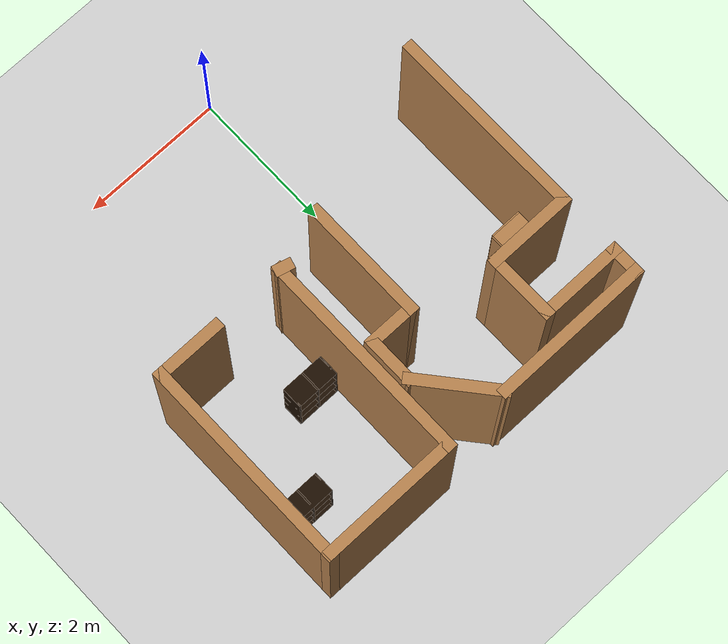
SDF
<sdf version="1.6">
 <world name="default">
  <model name="ground_plane">
   <static>1</static>
   <link name="link">
    <collision name="collision">
     <geometry><plane><normal>0 0 1</normal><size>100 100</size></plane></geometry>
     <surface><friction><ode><mu>100</mu><mu2>50</mu2></ode></friction></surface>
    </collision>
    <visual name="visual">
     <cast_shadows>0</cast_shadows>
     <geometry><plane><normal>0 0 1</normal><size>100 100</size></plane></geometry>
     <material>
      <script><uri>file://media/materials/scripts/gazebo.material</uri><name>Gazebo/Grey</name></script>
     </material>
    </visual>
   </link>
  </model>
  <model name="map_42">
   <link name="Wall_0">
    <pose>-0.25 6.70969 0 0 -0 3.14159</pose>
    <visual name="Wall_0_Visual">
     <pose>0 0 1.25 0 -0 0</pose>
     <geometry><box><size>2.25 0.15 2.5</size></box></geometry>
     <material>
      <script><uri>file://media/materials/scripts/gazebo.material</uri><name>Gazebo/Wood</name></script>
      <ambient>1 1 1 1</ambient>
      <shader type="pixel"/>
     </material>
     <meta><layer>0</layer></meta>
    </visual>
    <collision name="Wall_0_Collision">
     <pose>0 0 1.25 0 -0 0</pose>
     <geometry><box><size>2.25 0.15 2.5</size></box></geometry>
     <surface>
      <friction>
       <ode><mu>1</mu><mu2>1</mu2><fdir1>0 0 0</fdir1><slip1>0</slip1><slip2>0</slip2></ode>
       <torsional>
        <coefficient>1</coefficient>
        <patch_radius>0</patch_radius>
        <surface_radius>0</surface_radius>
        <use_patch_radius>1</use_patch_radius>
        <ode><slip>0</slip></ode>
       </torsional>
      </friction>
      <bounce><restitution_coefficient>0</restitution_coefficient><threshold>1e+06</threshold></bounce>
      <contact>
       <collide_without_contact>0</collide_without_contact>
       <collide_without_contact_bitmask>1</collide_without_contact_bitmask>
       <collide_bitmask>1</collide_bitmask>
       <ode>
        <soft_cfm>0</soft_cfm>
        <soft_erp>0.2</soft_erp>
        <kp>1e+13</kp>
        <kd>1</kd>
        <max_vel>0.01</max_vel>
        <min_depth>0</min_depth>
       </ode>
       <bullet>
        <split_impulse>1</split_impulse>
        <split_impulse_penetration_threshold>-0.01</split_impulse_penetration_threshold>
        <soft_cfm>0</soft_cfm>
        <soft_erp>0.2</soft_erp>
        <kp>1e+13</kp>
        <kd>1</kd>
       </bullet>
      </contact>
     </surface>
    </collision>
   </link>
   <link name="Wall_1">
    <pose>-1.3 6.53469 0 0 0 -1.5708</pose>
    <visual name="Wall_1_Visual">
     <pose>0 0 1.25 0 -0 0</pose>
     <geometry><box><size>0.5 0.15 2.5</size></box></geometry>
     <material>
      <script><uri>file://media/materials/scripts/gazebo.material</uri><name>Gazebo/Wood</name></script>
      <ambient>1 1 1 1</ambient>
      <shader type="pixel"/>
     </material>
     <meta><layer>0</layer></meta>
    </visual>
    <collision name="Wall_1_Collision">
     <pose>0 0 1.25 0 -0 0</pose>
     <geometry><box><size>0.5 0.15 2.5</size></box></geometry>
     <surface>
      <friction>
       <ode><mu>1</mu><mu2>1</mu2><fdir1>0 0 0</fdir1><slip1>0</slip1><slip2>0</slip2></ode>
       <torsional>
        <coefficient>1</coefficient>
        <patch_radius>0</patch_radius>
        <surface_radius>0</surface_radius>
        <use_patch_radius>1</use_patch_radius>
        <ode><slip>0</slip></ode>
       </torsional>
      </friction>
      <bounce><restitution_coefficient>0</restitution_coefficient><threshold>1e+06</threshold></bounce>
      <contact>
       <collide_without_contact>0</collide_without_contact>
       <collide_without_contact_bitmask>1</collide_without_contact_bitmask>
       <collide_bitmask>1</collide_bitmask>
       <ode>
        <soft_cfm>0</soft_cfm>
        <soft_erp>0.2</soft_erp>
        <kp>1e+13</kp>
        <kd>1</kd>
        <max_vel>0.01</max_vel>
        <min_depth>0</min_depth>
       </ode>
       <bullet>
        <split_impulse>1</split_impulse>
        <split_impulse_penetration_threshold>-0.01</split_impulse_penetration_threshold>
        <soft_cfm>0</soft_cfm>
        <soft_erp>0.2</soft_erp>
        <kp>1e+13</kp>
        <kd>1</kd>
       </bullet>
      </contact>
     </surface>
    </collision>
   </link>
   <link name="Wall_102">
    <pose>0.916228 4.44953 0 0 -0 1.5708</pose>
    <visual name="Wall_102_Visual">
     <pose>0 0 1.25 0 -0 0</pose>
     <geometry><box><size>1.75 0.15 2.5</size></box></geometry>
     <material>
      <script><uri>file://media/materials/scripts/gazebo.material</uri><name>Gazebo/Wood</name></script>
      <ambient>1 1 1 1</ambient>
      <shader type="pixel"/>
     </material>
     <meta><layer>0</layer></meta>
    </visual>
    <collision name="Wall_102_Collision">
     <pose>0 0 1.25 0 -0 0</pose>
     <geometry><box><size>1.75 0.15 2.5</size></box></geometry>
     <surface>
      <friction>
       <ode><mu>1</mu><mu2>1</mu2><fdir1>0 0 0</fdir1><slip1>0</slip1><slip2>0</slip2></ode>
       <torsional>
        <coefficient>1</coefficient>
        <patch_radius>0</patch_radius>
        <surface_radius>0</surface_radius>
        <use_patch_radius>1</use_patch_radius>
        <ode><slip>0</slip></ode>
       </torsional>
      </friction>
      <bounce><restitution_coefficient>0</restitution_coefficient><threshold>1e+06</threshold></bounce>
      <contact>
       <collide_without_contact>0</collide_without_contact>
       <collide_without_contact_bitmask>1</collide_without_contact_bitmask>
       <collide_bitmask>1</collide_bitmask>
       <ode>
        <soft_cfm>0</soft_cfm>
        <soft_erp>0.2</soft_erp>
        <kp>1e+13</kp>
        <kd>1</kd>
        <max_vel>0.01</max_vel>
        <min_depth>0</min_depth>
       </ode>
       <bullet>
        <split_impulse>1</split_impulse>
        <split_impulse_penetration_threshold>-0.01</split_impulse_penetration_threshold>
        <soft_cfm>0</soft_cfm>
        <soft_erp>0.2</soft_erp>
        <kp>1e+13</kp>
        <kd>1</kd>
       </bullet>
      </contact>
     </surface>
    </collision>
   </link>
   <link name="Wall_105">
    <pose>1.21623 5.24953 0 0 -0 0</pose>
    <visual name="Wall_105_Visual">
     <pose>0 0 1.25 0 -0 0</pose>
     <geometry><box><size>0.75 0.15 2.5</size></box></geometry>
     <material>
      <script><uri>file://media/materials/scripts/gazebo.material</uri><name>Gazebo/Wood</name></script>
      <ambient>1 1 1 1</ambient>
      <shader type="pixel"/>
     </material>
     <meta><layer>0</layer></meta>
    </visual>
    <collision name="Wall_105_Collision">
     <pose>0 0 1.25 0 -0 0</pose>
     <geometry><box><size>0.75 0.15 2.5</size></box></geometry>
     <surface>
      <friction>
       <ode><mu>1</mu><mu2>1</mu2><fdir1>0 0 0</fdir1><slip1>0</slip1><slip2>0</slip2></ode>
       <torsional>
        <coefficient>1</coefficient>
        <patch_radius>0</patch_radius>
        <surface_radius>0</surface_radius>
        <use_patch_radius>1</use_patch_radius>
        <ode><slip>0</slip></ode>
       </torsional>
      </friction>
      <bounce><restitution_coefficient>0</restitution_coefficient><threshold>1e+06</threshold></bounce>
      <contact>
       <collide_without_contact>0</collide_without_contact>
       <collide_without_contact_bitmask>1</collide_without_contact_bitmask>
       <collide_bitmask>1</collide_bitmask>
       <ode>
        <soft_cfm>0</soft_cfm>
        <soft_erp>0.2</soft_erp>
        <kp>1e+13</kp>
        <kd>1</kd>
        <max_vel>0.01</max_vel>
        <min_depth>0</min_depth>
       </ode>
       <bullet>
        <split_impulse>1</split_impulse>
        <split_impulse_penetration_threshold>-0.01</split_impulse_penetration_threshold>
        <soft_cfm>0</soft_cfm>
        <soft_erp>0.2</soft_erp>
        <kp>1e+13</kp>
        <kd>1</kd>
       </bullet>
      </contact>
     </surface>
    </collision>
   </link>
   <link name="Wall_106">
    <pose>1.51623 5.54953 0 0 -0 1.5708</pose>
    <visual name="Wall_106_Visual">
     <pose>0 0 1.25 0 -0 0</pose>
     <geometry><box><size>0.75 0.15 2.5</size></box></geometry>
     <material>
      <script><uri>file://media/materials/scripts/gazebo.material</uri><name>Gazebo/Wood</name></script>
      <ambient>1 1 1 1</ambient>
      <shader type="pixel"/>
     </material>
     <meta><layer>0</layer></meta>
    </visual>
    <collision name="Wall_106_Collision">
     <pose>0 0 1.25 0 -0 0</pose>
     <geometry><box><size>0.75 0.15 2.5</size></box></geometry>
     <surface>
      <friction>
       <ode><mu>1</mu><mu2>1</mu2><fdir1>0 0 0</fdir1><slip1>0</slip1><slip2>0</slip2></ode>
       <torsional>
        <coefficient>1</coefficient>
        <patch_radius>0</patch_radius>
        <surface_radius>0</surface_radius>
        <use_patch_radius>1</use_patch_radius>
        <ode><slip>0</slip></ode>
       </torsional>
      </friction>
      <bounce><restitution_coefficient>0</restitution_coefficient><threshold>1e+06</threshold></bounce>
      <contact>
       <collide_without_contact>0</collide_without_contact>
       <collide_without_contact_bitmask>1</collide_without_contact_bitmask>
       <collide_bitmask>1</collide_bitmask>
       <ode>
        <soft_cfm>0</soft_cfm>
        <soft_erp>0.2</soft_erp>
        <kp>1e+13</kp>
        <kd>1</kd>
        <max_vel>0.01</max_vel>
        <min_depth>0</min_depth>
       </ode>
       <bullet>
        <split_impulse>1</split_impulse>
        <split_impulse_penetration_threshold>-0.01</split_impulse_penetration_threshold>
        <soft_cfm>0</soft_cfm>
        <soft_erp>0.2</soft_erp>
        <kp>1e+13</kp>
        <kd>1</kd>
       </bullet>
      </contact>
     </surface>
    </collision>
   </link>
   <link name="Wall_107">
    <pose>1.15811 6.27961 0 0 -0 2.26514</pose>
    <visual name="Wall_107_Visual">
     <pose>0 0 1.25 0 -0 0</pose>
     <geometry><box><size>1.26931 0.15 2.5</size></box></geometry>
     <material>
      <script><uri>file://media/materials/scripts/gazebo.material</uri><name>Gazebo/Wood</name></script>
      <ambient>1 1 1 1</ambient>
      <shader type="pixel"/>
     </material>
     <meta><layer>0</layer></meta>
    </visual>
    <collision name="Wall_107_Collision">
     <pose>0 0 1.25 0 -0 0</pose>
     <geometry><box><size>1.26931 0.15 2.5</size></box></geometry>
     <surface>
      <friction>
       <ode><mu>1</mu><mu2>1</mu2><fdir1>0 0 0</fdir1><slip1>0</slip1><slip2>0</slip2></ode>
       <torsional>
        <coefficient>1</coefficient>
        <patch_radius>0</patch_radius>
        <surface_radius>0</surface_radius>
        <use_patch_radius>1</use_patch_radius>
        <ode><slip>0</slip></ode>
       </torsional>
      </friction>
      <bounce><restitution_coefficient>0</restitution_coefficient><threshold>1e+06</threshold></bounce>
      <contact>
       <collide_without_contact>0</collide_without_contact>
       <collide_without_contact_bitmask>1</collide_without_contact_bitmask>
       <collide_bitmask>1</collide_bitmask>
       <ode>
        <soft_cfm>0</soft_cfm>
        <soft_erp>0.2</soft_erp>
        <kp>1e+13</kp>
        <kd>1</kd>
        <max_vel>0.01</max_vel>
        <min_depth>0</min_depth>
       </ode>
       <bullet>
        <split_impulse>1</split_impulse>
        <split_impulse_penetration_threshold>-0.01</split_impulse_penetration_threshold>
        <soft_cfm>0</soft_cfm>
        <soft_erp>0.2</soft_erp>
        <kp>1e+13</kp>
        <kd>1</kd>
       </bullet>
      </contact>
     </surface>
    </collision>
   </link>
   <link name="Wall_4">
    <pose>-0.75 6.35969 0 0 -0 0</pose>
    <visual name="Wall_4_Visual">
     <pose>0 0 1.25 0 -0 0</pose>
     <geometry><box><size>1.25 0.15 2.5</size></box></geometry>
     <material>
      <script><uri>file://media/materials/scripts/gazebo.material</uri><name>Gazebo/Wood</name></script>
      <ambient>1 1 1 1</ambient>
      <shader type="pixel"/>
     </material>
     <meta><layer>0</layer></meta>
    </visual>
    <collision name="Wall_4_Collision">
     <pose>0 0 1.25 0 -0 0</pose>
     <geometry><box><size>1.25 0.15 2.5</size></box></geometry>
     <surface>
      <friction>
       <ode><mu>1</mu><mu2>1</mu2><fdir1>0 0 0</fdir1><slip1>0</slip1><slip2>0</slip2></ode>
       <torsional>
        <coefficient>1</coefficient>
        <patch_radius>0</patch_radius>
        <surface_radius>0</surface_radius>
        <use_patch_radius>1</use_patch_radius>
        <ode><slip>0</slip></ode>
       </torsional>
      </friction>
      <bounce><restitution_coefficient>0</restitution_coefficient><threshold>1e+06</threshold></bounce>
      <contact>
       <collide_without_contact>0</collide_without_contact>
       <collide_without_contact_bitmask>1</collide_without_contact_bitmask>
       <collide_bitmask>1</collide_bitmask>
       <ode>
        <soft_cfm>0</soft_cfm>
        <soft_erp>0.2</soft_erp>
        <kp>1e+13</kp>
        <kd>1</kd>
        <max_vel>0.01</max_vel>
        <min_depth>0</min_depth>
       </ode>
       <bullet>
        <split_impulse>1</split_impulse>
        <split_impulse_penetration_threshold>-0.01</split_impulse_penetration_threshold>
        <soft_cfm>0</soft_cfm>
        <soft_erp>0.2</soft_erp>
        <kp>1e+13</kp>
        <kd>1</kd>
       </bullet>
      </contact>
     </surface>
    </collision>
   </link>
   <link name="Wall_5">
    <pose>-0.2 5.93469 0 0 0 -1.5708</pose>
    <visual name="Wall_5_Visual">
     <pose>0 0 1.25 0 -0 0</pose>
     <geometry><box><size>1 0.15 2.5</size></box></geometry>
     <material>
      <script><uri>file://media/materials/scripts/gazebo.material</uri><name>Gazebo/Wood</name></script>
      <ambient>1 1 1 1</ambient>
      <shader type="pixel"/>
     </material>
     <meta><layer>0</layer></meta>
    </visual>
    <collision name="Wall_5_Collision">
     <pose>0 0 1.25 0 -0 0</pose>
     <geometry><box><size>1 0.15 2.5</size></box></geometry>
     <surface>
      <friction>
       <ode><mu>1</mu><mu2>1</mu2><fdir1>0 0 0</fdir1><slip1>0</slip1><slip2>0</slip2></ode>
       <torsional>
        <coefficient>1</coefficient>
        <patch_radius>0</patch_radius>
        <surface_radius>0</surface_radius>
        <use_patch_radius>1</use_patch_radius>
        <ode><slip>0</slip></ode>
       </torsional>
      </friction>
      <bounce><restitution_coefficient>0</restitution_coefficient><threshold>1e+06</threshold></bounce>
      <contact>
       <collide_without_contact>0</collide_without_contact>
       <collide_without_contact_bitmask>1</collide_without_contact_bitmask>
       <collide_bitmask>1</collide_bitmask>
       <ode>
        <soft_cfm>0</soft_cfm>
        <soft_erp>0.2</soft_erp>
        <kp>1e+13</kp>
        <kd>1</kd>
        <max_vel>0.01</max_vel>
        <min_depth>0</min_depth>
       </ode>
       <bullet>
        <split_impulse>1</split_impulse>
        <split_impulse_penetration_threshold>-0.01</split_impulse_penetration_threshold>
        <soft_cfm>0</soft_cfm>
        <soft_erp>0.2</soft_erp>
        <kp>1e+13</kp>
        <kd>1</kd>
       </bullet>
      </contact>
     </surface>
    </collision>
   </link>
   <link name="Wall_6">
    <pose>-0.75 5.50969 0 0 -0 3.14159</pose>
    <visual name="Wall_6_Visual">
     <pose>0 0 1.25 0 -0 0</pose>
     <geometry><box><size>1.25 0.15 2.5</size></box></geometry>
     <material>
      <script><uri>file://media/materials/scripts/gazebo.material</uri><name>Gazebo/Wood</name></script>
      <ambient>1 1 1 1</ambient>
      <shader type="pixel"/>
     </material>
     <meta><layer>0</layer></meta>
    </visual>
    <collision name="Wall_6_Collision">
     <pose>0 0 1.25 0 -0 0</pose>
     <geometry><box><size>1.25 0.15 2.5</size></box></geometry>
     <surface>
      <friction>
       <ode><mu>1</mu><mu2>1</mu2><fdir1>0 0 0</fdir1><slip1>0</slip1><slip2>0</slip2></ode>
       <torsional>
        <coefficient>1</coefficient>
        <patch_radius>0</patch_radius>
        <surface_radius>0</surface_radius>
        <use_patch_radius>1</use_patch_radius>
        <ode><slip>0</slip></ode>
       </torsional>
      </friction>
      <bounce><restitution_coefficient>0</restitution_coefficient><threshold>1e+06</threshold></bounce>
      <contact>
       <collide_without_contact>0</collide_without_contact>
       <collide_without_contact_bitmask>1</collide_without_contact_bitmask>
       <collide_bitmask>1</collide_bitmask>
       <ode>
        <soft_cfm>0</soft_cfm>
        <soft_erp>0.2</soft_erp>
        <kp>1e+13</kp>
        <kd>1</kd>
        <max_vel>0.01</max_vel>
        <min_depth>0</min_depth>
       </ode>
       <bullet>
        <split_impulse>1</split_impulse>
        <split_impulse_penetration_threshold>-0.01</split_impulse_penetration_threshold>
        <soft_cfm>0</soft_cfm>
        <soft_erp>0.2</soft_erp>
        <kp>1e+13</kp>
        <kd>1</kd>
       </bullet>
      </contact>
     </surface>
    </collision>
   </link>
   <link name="Wall_7">
    <pose>-1.3 4.20969 0 0 0 -1.5708</pose>
    <visual name="Wall_7_Visual">
     <pose>0 0 1.25 0 -0 0</pose>
     <geometry><box><size>2.75 0.15 2.5</size></box></geometry>
     <material>
      <script><uri>file://media/materials/scripts/gazebo.material</uri><name>Gazebo/Wood</name></script>
      <ambient>1 1 1 1</ambient>
      <shader type="pixel"/>
     </material>
     <meta><layer>0</layer></meta>
    </visual>
    <collision name="Wall_7_Collision">
     <pose>0 0 1.25 0 -0 0</pose>
     <geometry><box><size>2.75 0.15 2.5</size></box></geometry>
     <surface>
      <friction>
       <ode><mu>1</mu><mu2>1</mu2><fdir1>0 0 0</fdir1><slip1>0</slip1><slip2>0</slip2></ode>
       <torsional>
        <coefficient>1</coefficient>
        <patch_radius>0</patch_radius>
        <surface_radius>0</surface_radius>
        <use_patch_radius>1</use_patch_radius>
        <ode><slip>0</slip></ode>
       </torsional>
      </friction>
      <bounce><restitution_coefficient>0</restitution_coefficient><threshold>1e+06</threshold></bounce>
      <contact>
       <collide_without_contact>0</collide_without_contact>
       <collide_without_contact_bitmask>1</collide_without_contact_bitmask>
       <collide_bitmask>1</collide_bitmask>
       <ode>
        <soft_cfm>0</soft_cfm>
        <soft_erp>0.2</soft_erp>
        <kp>1e+13</kp>
        <kd>1</kd>
        <max_vel>0.01</max_vel>
        <min_depth>0</min_depth>
       </ode>
       <bullet>
        <split_impulse>1</split_impulse>
        <split_impulse_penetration_threshold>-0.01</split_impulse_penetration_threshold>
        <soft_cfm>0</soft_cfm>
        <soft_erp>0.2</soft_erp>
        <kp>1e+13</kp>
        <kd>1</kd>
       </bullet>
      </contact>
     </surface>
    </collision>
   </link>
   <link name="Wall_91">
    <pose>3.13782 3.87364 0 0 -0 0</pose>
    <visual name="Wall_91_Visual">
     <pose>0 0 1.25 0 -0 0</pose>
     <geometry><box><size>1 0.15 2.5</size></box></geometry>
     <material>
      <script><uri>file://media/materials/scripts/gazebo.material</uri><name>Gazebo/Wood</name></script>
      <ambient>1 1 1 1</ambient>
      <shader type="pixel"/>
     </material>
     <meta><layer>0</layer></meta>
    </visual>
    <collision name="Wall_91_Collision">
     <pose>0 0 1.25 0 -0 0</pose>
     <geometry><box><size>1 0.15 2.5</size></box></geometry>
     <surface>
      <friction>
       <ode><mu>1</mu><mu2>1</mu2><fdir1>0 0 0</fdir1><slip1>0</slip1><slip2>0</slip2></ode>
       <torsional>
        <coefficient>1</coefficient>
        <patch_radius>0</patch_radius>
        <surface_radius>0</surface_radius>
        <use_patch_radius>1</use_patch_radius>
        <ode><slip>0</slip></ode>
       </torsional>
      </friction>
      <bounce><restitution_coefficient>0</restitution_coefficient><threshold>1e+06</threshold></bounce>
      <contact>
       <collide_without_contact>0</collide_without_contact>
       <collide_without_contact_bitmask>1</collide_without_contact_bitmask>
       <collide_bitmask>1</collide_bitmask>
       <ode>
        <soft_cfm>0</soft_cfm>
        <soft_erp>0.2</soft_erp>
        <kp>1e+13</kp>
        <kd>1</kd>
        <max_vel>0.01</max_vel>
        <min_depth>0</min_depth>
       </ode>
       <bullet>
        <split_impulse>1</split_impulse>
        <split_impulse_penetration_threshold>-0.01</split_impulse_penetration_threshold>
        <soft_cfm>0</soft_cfm>
        <soft_erp>0.2</soft_erp>
        <kp>1e+13</kp>
        <kd>1</kd>
       </bullet>
      </contact>
     </surface>
    </collision>
   </link>
   <link name="Wall_92">
    <pose>3.56282 5.29864 0 0 -0 1.5708</pose>
    <visual name="Wall_92_Visual">
     <pose>0 0 1.25 0 -0 0</pose>
     <geometry><box><size>3 0.15 2.5</size></box></geometry>
     <material>
      <script><uri>file://media/materials/scripts/gazebo.material</uri><name>Gazebo/Wood</name></script>
      <ambient>1 1 1 1</ambient>
      <shader type="pixel"/>
     </material>
     <meta><layer>0</layer></meta>
    </visual>
    <collision name="Wall_92_Collision">
     <pose>0 0 1.25 0 -0 0</pose>
     <geometry><box><size>3 0.15 2.5</size></box></geometry>
     <surface>
      <friction>
       <ode><mu>1</mu><mu2>1</mu2><fdir1>0 0 0</fdir1><slip1>0</slip1><slip2>0</slip2></ode>
       <torsional>
        <coefficient>1</coefficient>
        <patch_radius>0</patch_radius>
        <surface_radius>0</surface_radius>
        <use_patch_radius>1</use_patch_radius>
        <ode><slip>0</slip></ode>
       </torsional>
      </friction>
      <bounce><restitution_coefficient>0</restitution_coefficient><threshold>1e+06</threshold></bounce>
      <contact>
       <collide_without_contact>0</collide_without_contact>
       <collide_without_contact_bitmask>1</collide_without_contact_bitmask>
       <collide_bitmask>1</collide_bitmask>
       <ode>
        <soft_cfm>0</soft_cfm>
        <soft_erp>0.2</soft_erp>
        <kp>1e+13</kp>
        <kd>1</kd>
        <max_vel>0.01</max_vel>
        <min_depth>0</min_depth>
       </ode>
       <bullet>
        <split_impulse>1</split_impulse>
        <split_impulse_penetration_threshold>-0.01</split_impulse_penetration_threshold>
        <soft_cfm>0</soft_cfm>
        <soft_erp>0.2</soft_erp>
        <kp>1e+13</kp>
        <kd>1</kd>
       </bullet>
      </contact>
     </surface>
    </collision>
   </link>
   <link name="Wall_93">
    <pose>2.63782 6.72364 0 0 -0 3.14159</pose>
    <visual name="Wall_93_Visual">
     <pose>0 0 1.25 0 -0 0</pose>
     <geometry><box><size>2 0.15 2.5</size></box></geometry>
     <material>
      <script><uri>file://media/materials/scripts/gazebo.material</uri><name>Gazebo/Wood</name></script>
      <ambient>1 1 1 1</ambient>
      <shader type="pixel"/>
     </material>
     <meta><layer>0</layer></meta>
    </visual>
    <collision name="Wall_93_Collision">
     <pose>0 0 1.25 0 -0 0</pose>
     <geometry><box><size>2 0.15 2.5</size></box></geometry>
     <surface>
      <friction>
       <ode><mu>1</mu><mu2>1</mu2><fdir1>0 0 0</fdir1><slip1>0</slip1><slip2>0</slip2></ode>
       <torsional>
        <coefficient>1</coefficient>
        <patch_radius>0</patch_radius>
        <surface_radius>0</surface_radius>
        <use_patch_radius>1</use_patch_radius>
        <ode><slip>0</slip></ode>
       </torsional>
      </friction>
      <bounce><restitution_coefficient>0</restitution_coefficient><threshold>1e+06</threshold></bounce>
      <contact>
       <collide_without_contact>0</collide_without_contact>
       <collide_without_contact_bitmask>1</collide_without_contact_bitmask>
       <collide_bitmask>1</collide_bitmask>
       <ode>
        <soft_cfm>0</soft_cfm>
        <soft_erp>0.2</soft_erp>
        <kp>1e+13</kp>
        <kd>1</kd>
        <max_vel>0.01</max_vel>
        <min_depth>0</min_depth>
       </ode>
       <bullet>
        <split_impulse>1</split_impulse>
        <split_impulse_penetration_threshold>-0.01</split_impulse_penetration_threshold>
        <soft_cfm>0</soft_cfm>
        <soft_erp>0.2</soft_erp>
        <kp>1e+13</kp>
        <kd>1</kd>
       </bullet>
      </contact>
     </surface>
    </collision>
   </link>
   <link name="Wall_94">
    <pose>1.71282 5.29864 0 0 0 -1.5708</pose>
    <visual name="Wall_94_Visual">
     <pose>0 0 1.25 0 -0 0</pose>
     <geometry><box><size>3 0.15 2.5</size></box></geometry>
     <material>
      <script><uri>file://media/materials/scripts/gazebo.material</uri><name>Gazebo/Wood</name></script>
      <ambient>1 1 1 1</ambient>
      <shader type="pixel"/>
     </material>
     <meta><layer>0</layer></meta>
    </visual>
    <collision name="Wall_94_Collision">
     <pose>0 0 1.25 0 -0 0</pose>
     <geometry><box><size>3 0.15 2.5</size></box></geometry>
     <surface>
      <friction>
       <ode><mu>1</mu><mu2>1</mu2><fdir1>0 0 0</fdir1><slip1>0</slip1><slip2>0</slip2></ode>
       <torsional>
        <coefficient>1</coefficient>
        <patch_radius>0</patch_radius>
        <surface_radius>0</surface_radius>
        <use_patch_radius>1</use_patch_radius>
        <ode><slip>0</slip></ode>
       </torsional>
      </friction>
      <bounce><restitution_coefficient>0</restitution_coefficient><threshold>1e+06</threshold></bounce>
      <contact>
       <collide_without_contact>0</collide_without_contact>
       <collide_without_contact_bitmask>1</collide_without_contact_bitmask>
       <collide_bitmask>1</collide_bitmask>
       <ode>
        <soft_cfm>0</soft_cfm>
        <soft_erp>0.2</soft_erp>
        <kp>1e+13</kp>
        <kd>1</kd>
        <max_vel>0.01</max_vel>
        <min_depth>0</min_depth>
       </ode>
       <bullet>
        <split_impulse>1</split_impulse>
        <split_impulse_penetration_threshold>-0.01</split_impulse_penetration_threshold>
        <soft_cfm>0</soft_cfm>
        <soft_erp>0.2</soft_erp>
        <kp>1e+13</kp>
        <kd>1</kd>
       </bullet>
      </contact>
     </surface>
    </collision>
   </link>
   <link name="Wall_97">
    <pose>1.66452 3.88658 0 0 -0 2.87979</pose>
    <visual name="Wall_97_Visual">
     <pose>0 0 1.25 0 -0 0</pose>
     <geometry><box><size>0.25 0.15 2.5</size></box></geometry>
     <material>
      <script><uri>file://media/materials/scripts/gazebo.material</uri><name>Gazebo/Wood</name></script>
      <ambient>1 1 1 1</ambient>
      <shader type="pixel"/>
     </material>
     <meta><layer>0</layer></meta>
    </visual>
    <collision name="Wall_97_Collision">
     <pose>0 0 1.25 0 -0 0</pose>
     <geometry><box><size>0.25 0.15 2.5</size></box></geometry>
     <surface>
      <friction>
       <ode><mu>1</mu><mu2>1</mu2><fdir1>0 0 0</fdir1><slip1>0</slip1><slip2>0</slip2></ode>
       <torsional>
        <coefficient>1</coefficient>
        <patch_radius>0</patch_radius>
        <surface_radius>0</surface_radius>
        <use_patch_radius>1</use_patch_radius>
        <ode><slip>0</slip></ode>
       </torsional>
      </friction>
      <bounce><restitution_coefficient>0</restitution_coefficient><threshold>1e+06</threshold></bounce>
      <contact>
       <collide_without_contact>0</collide_without_contact>
       <collide_without_contact_bitmask>1</collide_without_contact_bitmask>
       <collide_bitmask>1</collide_bitmask>
       <ode>
        <soft_cfm>0</soft_cfm>
        <soft_erp>0.2</soft_erp>
        <kp>1e+13</kp>
        <kd>1</kd>
        <max_vel>0.01</max_vel>
        <min_depth>0</min_depth>
       </ode>
       <bullet>
        <split_impulse>1</split_impulse>
        <split_impulse_penetration_threshold>-0.01</split_impulse_penetration_threshold>
        <soft_cfm>0</soft_cfm>
        <soft_erp>0.2</soft_erp>
        <kp>1e+13</kp>
        <kd>1</kd>
       </bullet>
      </contact>
     </surface>
    </collision>
   </link>
   <static>1</static>
   <pose>-0.44967 -1.08542 0 0 -0 0</pose>
  </model>
  <model name="cabinet">
   <static>1</static>
   <link name="cabinet_bottom_plate">
    <inertial>
     <pose>0 0 -1 0 -0 0</pose>
     <inertia><ixx>2.05</ixx><ixy>0</ixy><ixz>0</ixz><iyy>2.05</iyy><iyz>0</iyz><izz>2.05</izz></inertia>
     <mass>25</mass>
    </inertial>
    <collision name="cabinet_bottom_plate_geom">
     <pose>0 0 0.01 0 -0 0</pose>
     <geometry><box><size>0.45 0.45 0.02</size></box></geometry>
    </collision>
    <visual name="cabinet_bottom_plate_geom_visual">
     <pose>0 0 0.01 0 -0 0</pose>
     <geometry><box><size>0.45 0.45 0.02</size></box></geometry>
     <material>
      <script><uri>file://media/materials/scripts/gazebo.material</uri><name>Gazebo/Wood</name></script>
     </material>
    </visual>
    <collision name="cabinet_bottom_plate_geom_cabinet_back_plate">
     <pose>0.235 0 0.51 0 -0 0</pose>
     <geometry><box><size>0.02 0.45 1.02</size></box></geometry>
    </collision>
    <visual name="cabinet_bottom_plate_geom_cabinet_back_plate_visual">
     <pose>0.235 0 0.51 0 -0 0</pose>
     <geometry><box><size>0.02 0.45 1.02</size></box></geometry>
     <material>
      <script><uri>file://media/materials/scripts/gazebo.material</uri><name>Gazebo/Wood</name></script>
     </material>
    </visual>
    <collision name="cabinet_bottom_plate_geom_cabinet_left_plate">
     <pose>0 0.235 0.51 0 -0 0</pose>
     <geometry><box><size>0.45 0.02 1.02</size></box></geometry>
    </collision>
    <visual name="cabinet_bottom_plate_geom_cabinet_left_plate_visual">
     <pose>0 0.235 0.51 0 -0 0</pose>
     <geometry><box><size>0.45 0.02 1.02</size></box></geometry>
     <material>
      <script><uri>file://media/materials/scripts/gazebo.material</uri><name>Gazebo/Wood</name></script>
     </material>
    </visual>
    <collision name="cabinet_bottom_plate_geom_cabinet_middle_plate">
     <pose>0 0 0.51 0 -0 0</pose>
     <geometry><box><size>0.45 0.45 0.02</size></box></geometry>
    </collision>
    <visual name="cabinet_bottom_plate_geom_cabinet_middle_plate_visual">
     <pose>0 0 0.51 0 -0 0</pose>
     <geometry><box><size>0.45 0.45 0.02</size></box></geometry>
     <material>
      <script><uri>file://media/materials/scripts/gazebo.material</uri><name>Gazebo/Wood</name></script>
     </material>
    </visual>
    <collision name="cabinet_bottom_plate_geom_cabinet_right_plate">
     <pose>0 -0.235 0.51 0 -0 0</pose>
     <geometry><box><size>0.45 0.02 1.02</size></box></geometry>
    </collision>
    <visual name="cabinet_bottom_plate_geom_cabinet_right_plate_visual">
     <pose>0 -0.235 0.51 0 -0 0</pose>
     <geometry><box><size>0.45 0.02 1.02</size></box></geometry>
     <material>
      <script><uri>file://media/materials/scripts/gazebo.material</uri><name>Gazebo/Wood</name></script>
     </material>
    </visual>
    <collision name="cabinet_bottom_plate_geom_cabinet_top_plate">
     <pose>0 0 1.01 0 -0 0</pose>
     <geometry><box><size>0.45 0.45 0.02</size></box></geometry>
    </collision>
    <visual name="cabinet_bottom_plate_geom_cabinet_top_plate_visual">
     <pose>0 0 1.01 0 -0 0</pose>
     <geometry><box><size>0.45 0.45 0.02</size></box></geometry>
     <material>
      <script><uri>file://media/materials/scripts/gazebo.material</uri><name>Gazebo/Wood</name></script>
     </material>
    </visual>
   </link>
   <pose>-1.43356 4.14212 0 0 -0 0</pose>
  </model>
  <model name="6_Cube_StorageE_3">
   <link name="Wall_0">
    <pose>0 0 0.01 0 -0 0</pose>
    <inertial>
     <mass>1.6201</mass>
     <inertia><ixx>0.0119</ixx><iyy>0.0631</iyy><izz>0.0513</izz><ixy>0</ixy><ixz>0</ixz><iyz>0</iyz></inertia>
    </inertial>
    <collision name="Wall_0_Collision"><geometry><box><size>0.616 0.296 0.02</size></box></geometry></collision>
    <visual name="Wall_0_Visual">
     <geometry><box><size>0.616 0.296 0.02</size></box></geometry>
     <material>
      <script><uri>file://media/materials/scripts/gazebo.material</uri><name>Gazebo/Grey</name></script>
      <ambient>0.105882 0.0509804 0 1</ambient>
     </material>
    </visual>
   </link>
   <joint name="0_2" type="fixed">
    <pose>-0.308 0 0 0 -0 0</pose>
    <parent>Wall_2</parent>
    <child>Wall_0</child>
    <axis>
     <xyz>1 0 0</xyz>
     <use_parent_model_frame>0</use_parent_model_frame>
     <limit><lower>-1e+16</lower><upper>1e+16</upper></limit>
    </axis>
   </joint>
   <joint name="0_12" type="fixed">
    <parent>Wall_12</parent>
    <child>Wall_0</child>
    <axis>
     <xyz>0 0 1</xyz>
     <use_parent_model_frame>0</use_parent_model_frame>
     <limit><lower>-1e+16</lower><upper>1e+16</upper></limit>
    </axis>
   </joint>
   <joint name="0_4" type="fixed">
    <pose>0.308 0 0 0 -0 0</pose>
    <parent>Wall_4</parent>
    <child>Wall_0</child>
    <axis>
     <xyz>1 0 0</xyz>
     <use_parent_model_frame>0</use_parent_model_frame>
     <limit><lower>-1e+16</lower><upper>1e+16</upper></limit>
    </axis>
   </joint>
   <link name="Wall_10">
    <pose>0 0 0.61 0 -0 0</pose>
    <inertial>
     <mass>1.6201</mass>
     <inertia><ixx>0.0119</ixx><iyy>0.0631</iyy><izz>0.0513</izz><ixy>0</ixy><ixz>0</ixz><iyz>0</iyz></inertia>
    </inertial>
    <collision name="Wall_10_Collision"><geometry><box><size>0.616 0.296 0.02</size></box></geometry></collision>
    <visual name="Wall_10_Visual">
     <geometry><box><size>0.616 0.296 0.02</size></box></geometry>
     <material>
      <script><uri>file://media/materials/scripts/gazebo.material</uri><name>Gazebo/Grey</name></script>
      <ambient>0.105882 0.0509804 0 1</ambient>
     </material>
    </visual>
   </link>
   <joint name="10_2" type="fixed">
    <pose>-0.308 0 0 0 -0 0</pose>
    <parent>Wall_2</parent>
    <child>Wall_10</child>
    <axis>
     <xyz>1 0 0</xyz>
     <use_parent_model_frame>0</use_parent_model_frame>
     <limit><lower>-1e+16</lower><upper>1e+16</upper></limit>
    </axis>
   </joint>
   <joint name="10_12" type="fixed">
    <parent>Wall_12</parent>
    <child>Wall_10</child>
    <axis>
     <xyz>0 0 1</xyz>
     <use_parent_model_frame>0</use_parent_model_frame>
     <limit><lower>-1e+16</lower><upper>1e+16</upper></limit>
    </axis>
   </joint>
   <joint name="10_4" type="fixed">
    <pose>0.308 0 0 0 -0 0</pose>
    <parent>Wall_4</parent>
    <child>Wall_10</child>
    <axis>
     <xyz>1 0 0</xyz>
     <use_parent_model_frame>0</use_parent_model_frame>
     <limit><lower>-1e+16</lower><upper>1e+16</upper></limit>
    </axis>
   </joint>
   <link name="Wall_12">
    <pose>0 0 0.4575 0 -0 0</pose>
    <inertial>
     <mass>2.4065</mass>
     <inertia><ixx>0.0177</ixx><iyy>0.1855</iyy><izz>0.168</izz><ixy>0</ixy><ixz>0</ixz><iyz>0</iyz></inertia>
    </inertial>
    <collision name="Wall_12_Collision"><geometry><box><size>0.02 0.296 0.915</size></box></geometry></collision>
    <visual name="Wall_12_Visual">
     <geometry><box><size>0.02 0.296 0.915</size></box></geometry>
     <material>
      <script><uri>file://media/materials/scripts/gazebo.material</uri><name>Gazebo/Grey</name></script>
      <ambient>0.105882 0.0509804 0 1</ambient>
     </material>
    </visual>
   </link>
   <link name="Wall_2">
    <pose>-0.298 0 0.4575 0 -0 0</pose>
    <inertial>
     <mass>2.4065</mass>
     <inertia><ixx>0.0177</ixx><iyy>0.1855</iyy><izz>0.168</izz><ixy>0</ixy><ixz>0</ixz><iyz>0</iyz></inertia>
    </inertial>
    <collision name="Wall_2_Collision"><geometry><box><size>0.02 0.296 0.915</size></box></geometry></collision>
    <visual name="Wall_2_Visual">
     <geometry><box><size>0.02 0.296 0.915</size></box></geometry>
     <material>
      <script><uri>file://media/materials/scripts/gazebo.material</uri><name>Gazebo/Grey</name></script>
      <ambient>0.105882 0.0509804 0 1</ambient>
     </material>
    </visual>
   </link>
   <link name="Wall_4">
    <pose>0.298 0 0.4575 0 -0 0</pose>
    <inertial>
     <mass>2.4065</mass>
     <inertia><ixx>0.0177</ixx><iyy>0.1855</iyy><izz>0.168</izz><ixy>0</ixy><ixz>0</ixz><iyz>0</iyz></inertia>
    </inertial>
    <collision name="Wall_4_Collision"><geometry><box><size>0.02 0.296 0.915</size></box></geometry></collision>
    <visual name="Wall_4_Visual">
     <geometry><box><size>0.02 0.296 0.915</size></box></geometry>
     <material>
      <script><uri>file://media/materials/scripts/gazebo.material</uri><name>Gazebo/Grey</name></script>
      <ambient>0.105882 0.0509804 0 1</ambient>
     </material>
    </visual>
   </link>
   <link name="Wall_6">
    <pose>0 0 0.905 0 -0 0</pose>
    <inertial>
     <mass>1.6201</mass>
     <inertia><ixx>0.0119</ixx><iyy>0.0631</iyy><izz>0.0513</izz><ixy>0</ixy><ixz>0</ixz><iyz>0</iyz></inertia>
    </inertial>
    <collision name="Wall_6_Collision"><geometry><box><size>0.616 0.296 0.02</size></box></geometry></collision>
    <visual name="Wall_6_Visual">
     <geometry><box><size>0.616 0.296 0.02</size></box></geometry>
     <material>
      <script><uri>file://media/materials/scripts/gazebo.material</uri><name>Gazebo/Grey</name></script>
      <ambient>0.105882 0.0509804 0 1</ambient>
     </material>
    </visual>
   </link>
   <joint name="6_2" type="fixed">
    <pose>-0.308 0 0 0 -0 0</pose>
    <parent>Wall_2</parent>
    <child>Wall_6</child>
    <axis>
     <xyz>2 0 0</xyz>
     <use_parent_model_frame>0</use_parent_model_frame>
     <limit><lower>-1e+16</lower><upper>1e+16</upper></limit>
    </axis>
   </joint>
   <joint name="6_12" type="fixed">
    <parent>Wall_12</parent>
    <child>Wall_6</child>
    <axis>
     <xyz>0 0 1</xyz>
     <use_parent_model_frame>0</use_parent_model_frame>
     <limit><lower>-1e+16</lower><upper>1e+16</upper></limit>
    </axis>
   </joint>
   <joint name="6_4" type="fixed">
    <pose>0.308 0 0 0 -0 0</pose>
    <parent>Wall_4</parent>
    <child>Wall_6</child>
    <axis>
     <xyz>1 0 0</xyz>
     <use_parent_model_frame>0</use_parent_model_frame>
     <limit><lower>-1e+16</lower><upper>1e+16</upper></limit>
    </axis>
   </joint>
   <link name="Wall_8">
    <pose>0 0 0.305 0 -0 0</pose>
    <inertial>
     <mass>1.6201</mass>
     <inertia><ixx>0.0119</ixx><iyy>0.0631</iyy><izz>0.0513</izz><ixy>0</ixy><ixz>0</ixz><iyz>0</iyz></inertia>
    </inertial>
    <collision name="Wall_8_Collision"><geometry><box><size>0.616 0.296 0.02</size></box></geometry></collision>
    <visual name="Wall_8_Visual">
     <geometry><box><size>0.616 0.296 0.02</size></box></geometry>
     <material>
      <script><uri>file://media/materials/scripts/gazebo.material</uri><name>Gazebo/Grey</name></script>
      <ambient>0.105882 0.0509804 0 1</ambient>
     </material>
    </visual>
   </link>
   <joint name="8_2" type="fixed">
    <pose>-0.308 0 0 0 -0 0</pose>
    <parent>Wall_2</parent>
    <child>Wall_8</child>
    <axis>
     <xyz>1 0 0</xyz>
     <use_parent_model_frame>0</use_parent_model_frame>
     <limit><lower>-1e+16</lower><upper>1e+16</upper></limit>
    </axis>
   </joint>
   <joint name="8_12" type="fixed">
    <parent>Wall_12</parent>
    <child>Wall_8</child>
    <axis>
     <xyz>0 0 1</xyz>
     <use_parent_model_frame>0</use_parent_model_frame>
     <limit><lower>-1e+16</lower><upper>1e+16</upper></limit>
    </axis>
   </joint>
   <joint name="8_4" type="fixed">
    <pose>0.308 0 0 0 -0 0</pose>
    <parent>Wall_4</parent>
    <child>Wall_8</child>
    <axis>
     <xyz>1 0 0</xyz>
     <use_parent_model_frame>0</use_parent_model_frame>
     <limit><lower>-1e+16</lower><upper>1e+16</upper></limit>
    </axis>
   </joint>
   <static>1</static>
   <pose>1.66266 3.7153 0 0 -0 0</pose>
  </model>
  <model name="6_Cube_StorageE_2">
   <link name="Wall_0">
    <pose>0 0 0.01 0 -0 0</pose>
    <inertial>
     <mass>1.6201</mass>
     <inertia><ixx>0.0119</ixx><iyy>0.0631</iyy><izz>0.0513</izz><ixy>0</ixy><ixz>0</ixz><iyz>0</iyz></inertia>
    </inertial>
    <collision name="Wall_0_Collision"><geometry><box><size>0.616 0.296 0.02</size></box></geometry></collision>
    <visual name="Wall_0_Visual">
     <geometry><box><size>0.616 0.296 0.02</size></box></geometry>
     <material>
      <script><uri>file://media/materials/scripts/gazebo.material</uri><name>Gazebo/Grey</name></script>
      <ambient>0.105882 0.0509804 0 1</ambient>
     </material>
    </visual>
   </link>
   <joint name="0_2" type="fixed">
    <pose>-0.308 0 0 0 -0 0</pose>
    <parent>Wall_2</parent>
    <child>Wall_0</child>
    <axis>
     <xyz>1 0 0</xyz>
     <use_parent_model_frame>0</use_parent_model_frame>
     <limit><lower>-1e+16</lower><upper>1e+16</upper></limit>
    </axis>
   </joint>
   <joint name="0_12" type="fixed">
    <parent>Wall_12</parent>
    <child>Wall_0</child>
    <axis>
     <xyz>0 0 1</xyz>
     <use_parent_model_frame>0</use_parent_model_frame>
     <limit><lower>-1e+16</lower><upper>1e+16</upper></limit>
    </axis>
   </joint>
   <joint name="0_4" type="fixed">
    <pose>0.308 0 0 0 -0 0</pose>
    <parent>Wall_4</parent>
    <child>Wall_0</child>
    <axis>
     <xyz>1 0 0</xyz>
     <use_parent_model_frame>0</use_parent_model_frame>
     <limit><lower>-1e+16</lower><upper>1e+16</upper></limit>
    </axis>
   </joint>
   <link name="Wall_10">
    <pose>0 0 0.61 0 -0 0</pose>
    <inertial>
     <mass>1.6201</mass>
     <inertia><ixx>0.0119</ixx><iyy>0.0631</iyy><izz>0.0513</izz><ixy>0</ixy><ixz>0</ixz><iyz>0</iyz></inertia>
    </inertial>
    <collision name="Wall_10_Collision"><geometry><box><size>0.616 0.296 0.02</size></box></geometry></collision>
    <visual name="Wall_10_Visual">
     <geometry><box><size>0.616 0.296 0.02</size></box></geometry>
     <material>
      <script><uri>file://media/materials/scripts/gazebo.material</uri><name>Gazebo/Grey</name></script>
      <ambient>0.105882 0.0509804 0 1</ambient>
     </material>
    </visual>
   </link>
   <joint name="10_2" type="fixed">
    <pose>-0.308 0 0 0 -0 0</pose>
    <parent>Wall_2</parent>
    <child>Wall_10</child>
    <axis>
     <xyz>1 0 0</xyz>
     <use_parent_model_frame>0</use_parent_model_frame>
     <limit><lower>-1e+16</lower><upper>1e+16</upper></limit>
    </axis>
   </joint>
   <joint name="10_12" type="fixed">
    <parent>Wall_12</parent>
    <child>Wall_10</child>
    <axis>
     <xyz>0 0 1</xyz>
     <use_parent_model_frame>0</use_parent_model_frame>
     <limit><lower>-1e+16</lower><upper>1e+16</upper></limit>
    </axis>
   </joint>
   <joint name="10_4" type="fixed">
    <pose>0.308 0 0 0 -0 0</pose>
    <parent>Wall_4</parent>
    <child>Wall_10</child>
    <axis>
     <xyz>1 0 0</xyz>
     <use_parent_model_frame>0</use_parent_model_frame>
     <limit><lower>-1e+16</lower><upper>1e+16</upper></limit>
    </axis>
   </joint>
   <link name="Wall_12">
    <pose>0 0 0.4575 0 -0 0</pose>
    <inertial>
     <mass>2.4065</mass>
     <inertia><ixx>0.0177</ixx><iyy>0.1855</iyy><izz>0.168</izz><ixy>0</ixy><ixz>0</ixz><iyz>0</iyz></inertia>
    </inertial>
    <collision name="Wall_12_Collision"><geometry><box><size>0.02 0.296 0.915</size></box></geometry></collision>
    <visual name="Wall_12_Visual">
     <geometry><box><size>0.02 0.296 0.915</size></box></geometry>
     <material>
      <script><uri>file://media/materials/scripts/gazebo.material</uri><name>Gazebo/Grey</name></script>
      <ambient>0.105882 0.0509804 0 1</ambient>
     </material>
    </visual>
   </link>
   <link name="Wall_2">
    <pose>-0.298 0 0.4575 0 -0 0</pose>
    <inertial>
     <mass>2.4065</mass>
     <inertia><ixx>0.0177</ixx><iyy>0.1855</iyy><izz>0.168</izz><ixy>0</ixy><ixz>0</ixz><iyz>0</iyz></inertia>
    </inertial>
    <collision name="Wall_2_Collision"><geometry><box><size>0.02 0.296 0.915</size></box></geometry></collision>
    <visual name="Wall_2_Visual">
     <geometry><box><size>0.02 0.296 0.915</size></box></geometry>
     <material>
      <script><uri>file://media/materials/scripts/gazebo.material</uri><name>Gazebo/Grey</name></script>
      <ambient>0.105882 0.0509804 0 1</ambient>
     </material>
    </visual>
   </link>
   <link name="Wall_4">
    <pose>0.298 0 0.4575 0 -0 0</pose>
    <inertial>
     <mass>2.4065</mass>
     <inertia><ixx>0.0177</ixx><iyy>0.1855</iyy><izz>0.168</izz><ixy>0</ixy><ixz>0</ixz><iyz>0</iyz></inertia>
    </inertial>
    <collision name="Wall_4_Collision"><geometry><box><size>0.02 0.296 0.915</size></box></geometry></collision>
    <visual name="Wall_4_Visual">
     <geometry><box><size>0.02 0.296 0.915</size></box></geometry>
     <material>
      <script><uri>file://media/materials/scripts/gazebo.material</uri><name>Gazebo/Grey</name></script>
      <ambient>0.105882 0.0509804 0 1</ambient>
     </material>
    </visual>
   </link>
   <link name="Wall_6">
    <pose>0 0 0.905 0 -0 0</pose>
    <inertial>
     <mass>1.6201</mass>
     <inertia><ixx>0.0119</ixx><iyy>0.0631</iyy><izz>0.0513</izz><ixy>0</ixy><ixz>0</ixz><iyz>0</iyz></inertia>
    </inertial>
    <collision name="Wall_6_Collision"><geometry><box><size>0.616 0.296 0.02</size></box></geometry></collision>
    <visual name="Wall_6_Visual">
     <geometry><box><size>0.616 0.296 0.02</size></box></geometry>
     <material>
      <script><uri>file://media/materials/scripts/gazebo.material</uri><name>Gazebo/Grey</name></script>
      <ambient>0.105882 0.0509804 0 1</ambient>
     </material>
    </visual>
   </link>
   <joint name="6_2" type="fixed">
    <pose>-0.308 0 0 0 -0 0</pose>
    <parent>Wall_2</parent>
    <child>Wall_6</child>
    <axis>
     <xyz>2 0 0</xyz>
     <use_parent_model_frame>0</use_parent_model_frame>
     <limit><lower>-1e+16</lower><upper>1e+16</upper></limit>
    </axis>
   </joint>
   <joint name="6_12" type="fixed">
    <parent>Wall_12</parent>
    <child>Wall_6</child>
    <axis>
     <xyz>0 0 1</xyz>
     <use_parent_model_frame>0</use_parent_model_frame>
     <limit><lower>-1e+16</lower><upper>1e+16</upper></limit>
    </axis>
   </joint>
   <joint name="6_4" type="fixed">
    <pose>0.308 0 0 0 -0 0</pose>
    <parent>Wall_4</parent>
    <child>Wall_6</child>
    <axis>
     <xyz>1 0 0</xyz>
     <use_parent_model_frame>0</use_parent_model_frame>
     <limit><lower>-1e+16</lower><upper>1e+16</upper></limit>
    </axis>
   </joint>
   <link name="Wall_8">
    <pose>0 0 0.305 0 -0 0</pose>
    <inertial>
     <mass>1.6201</mass>
     <inertia><ixx>0.0119</ixx><iyy>0.0631</iyy><izz>0.0513</izz><ixy>0</ixy><ixz>0</ixz><iyz>0</iyz></inertia>
    </inertial>
    <collision name="Wall_8_Collision"><geometry><box><size>0.616 0.296 0.02</size></box></geometry></collision>
    <visual name="Wall_8_Visual">
     <geometry><box><size>0.616 0.296 0.02</size></box></geometry>
     <material>
      <script><uri>file://media/materials/scripts/gazebo.material</uri><name>Gazebo/Grey</name></script>
      <ambient>0.105882 0.0509804 0 1</ambient>
     </material>
    </visual>
   </link>
   <joint name="8_2" type="fixed">
    <pose>-0.308 0 0 0 -0 0</pose>
    <parent>Wall_2</parent>
    <child>Wall_8</child>
    <axis>
     <xyz>1 0 0</xyz>
     <use_parent_model_frame>0</use_parent_model_frame>
     <limit><lower>-1e+16</lower><upper>1e+16</upper></limit>
    </axis>
   </joint>
   <joint name="8_12" type="fixed">
    <parent>Wall_12</parent>
    <child>Wall_8</child>
    <axis>
     <xyz>0 0 1</xyz>
     <use_parent_model_frame>0</use_parent_model_frame>
     <limit><lower>-1e+16</lower><upper>1e+16</upper></limit>
    </axis>
   </joint>
   <joint name="8_4" type="fixed">
    <pose>0.308 0 0 0 -0 0</pose>
    <parent>Wall_4</parent>
    <child>Wall_8</child>
    <axis>
     <xyz>1 0 0</xyz>
     <use_parent_model_frame>0</use_parent_model_frame>
     <limit><lower>-1e+16</lower><upper>1e+16</upper></limit>
    </axis>
   </joint>
   <static>1</static>
   <pose>2.68973 4.73789 0 0 -0 0</pose>
  </model>
 </world>
</sdf>
